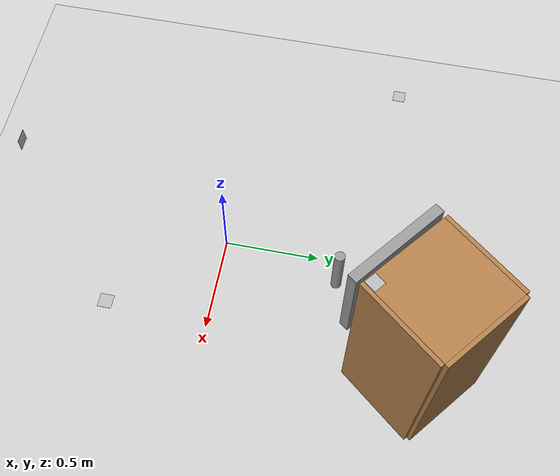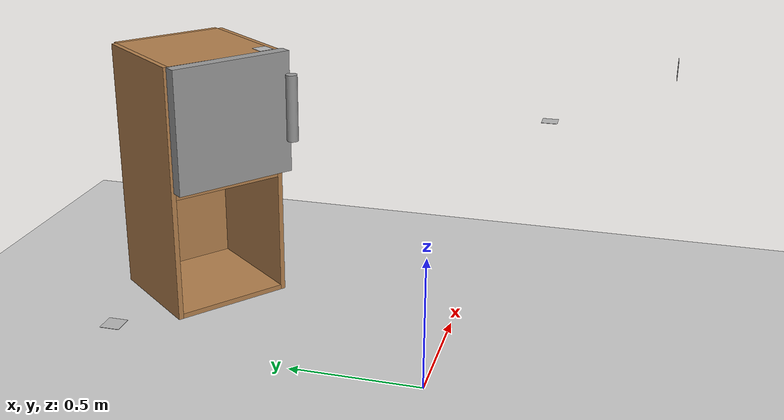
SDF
<sdf version="1.7">
 <world name="default">
  <light name="sun" type="directional">
   <pose>0 0 10 0 -0 0</pose>
   <diffuse>0.8 0.8 0.8 1</diffuse>
   <specular>0.2 0.2 0.2 1</specular>
   <attenuation>
    <range>1000</range>
    <constant>0.9</constant>
    <linear>0.01</linear>
    <quadratic>0.001</quadratic>
   </attenuation>
   <direction>-0.5 0.1 -0.9</direction>
   <spot><inner_angle>0</inner_angle><outer_angle>0</outer_angle><falloff>0</falloff></spot>
  </light>
  <model name="ground_plane">
   <static>1</static>
   <link name="link">
    <collision name="collision">
     <geometry><plane><normal>0 0 1</normal><size>100 100</size></plane></geometry>
     <surface>
      <contact><collide_bitmask>65535</collide_bitmask></contact>
      <friction><ode><mu>100</mu><mu2>50</mu2></ode></friction>
     </surface>
    </collision>
    <visual name="visual">
     <cast_shadows>0</cast_shadows>
     <geometry><plane><normal>0 0 1</normal><size>100 100</size></plane></geometry>
     <material>
      <script><uri>file://media/materials/scripts/gazebo.material</uri><name>Gazebo/Grey</name></script>
     </material>
    </visual>
   </link>
  </model>
  <gravity>0 0 -9.8</gravity>
  <magnetic_field>6e-06 2.3e-05 -4.2e-05</magnetic_field>
  <atmosphere type="adiabatic"/>
  <physics type="ode">
   <max_step_size>0.001</max_step_size>
   <real_time_factor>1</real_time_factor>
   <real_time_update_rate>1000</real_time_update_rate>
  </physics>
  <scene><ambient>0.4 0.4 0.4 1</ambient><background>0.7 0.7 0.7 1</background><shadows>1</shadows></scene>
  <spherical_coordinates>
   <surface_model>EARTH_WGS84</surface_model>
   <latitude_deg>0</latitude_deg>
   <longitude_deg>0</longitude_deg>
   <elevation>0</elevation>
   <heading_deg>0</heading_deg>
  </spherical_coordinates>
  <model name="Cabinet">
   <link name="link_1">
    <inertial>
     <mass>0.0117628</mass>
     <inertia>
      <ixx>0.00047208</ixx>
      <ixy>0</ixy>
      <ixz>0</ixz>
      <iyy>0.000233782</iyy>
      <iyz>0</iyz>
      <izz>0.000242892</izz>
     </inertia>
    </inertial>
    <pose>-0.080444 1.09691 0.789345 0 -0 0.910773</pose>
    <visual name="visual">
     <geometry><box><size>0.048406 0.495426 0.485956</size></box></geometry>
     <material>
      <lighting>1</lighting>
      <script><uri>file://media/materials/scripts/gazebo.material</uri><name>Gazebo/Grey</name></script>
      <shader type="pixel"/>
      <emissive>0 0 0 1</emissive>
     </material>
    </visual>
    <collision name="collision">
     <geometry><box><size>0.048406 0.495426 0.485956</size></box></geometry>
     <surface>
      <friction>
       <ode><mu>1</mu><mu2>1</mu2><fdir1>0 0 0</fdir1><slip1>0</slip1><slip2>0</slip2></ode>
       <torsional>
        <coefficient>1</coefficient>
        <patch_radius>0</patch_radius>
        <surface_radius>0</surface_radius>
        <use_patch_radius>1</use_patch_radius>
        <ode><slip>0</slip></ode>
       </torsional>
      </friction>
      <bounce><restitution_coefficient>0</restitution_coefficient><threshold>1e+06</threshold></bounce>
      <contact>
       <collide_without_contact>0</collide_without_contact>
       <collide_without_contact_bitmask>1</collide_without_contact_bitmask>
       <collide_bitmask>1</collide_bitmask>
       <ode>
        <soft_cfm>0</soft_cfm>
        <soft_erp>0.2</soft_erp>
        <kp>1e+13</kp>
        <kd>1</kd>
        <max_vel>0.01</max_vel>
        <min_depth>0</min_depth>
       </ode>
       <bullet>
        <split_impulse>1</split_impulse>
        <split_impulse_penetration_threshold>-0.01</split_impulse_penetration_threshold>
        <soft_cfm>0</soft_cfm>
        <soft_erp>0.2</soft_erp>
        <kp>1e+13</kp>
        <kd>1</kd>
       </bullet>
      </contact>
     </surface>
    </collision>
   </link>
   <link name="link_2">
    <inertial>
     <mass>0.000520077</mass>
     <inertia>
      <ixx>2.98392e-06</ixx>
      <ixy>0</ixy>
      <ixz>0</ixz>
      <iyy>2.98392e-06</iyy>
      <iyz>0</iyz>
      <izz>1.30256e-07</izz>
     </inertia>
    </inertial>
    <pose>-0.006569 0.88102 0.839102 0 -0 0.860373</pose>
    <visual name="visual">
     <geometry><cylinder><radius>0.022381</radius><length>0.259512</length></cylinder></geometry>
     <material>
      <lighting>1</lighting>
      <script><uri>file://media/materials/scripts/gazebo.material</uri><name>Gazebo/Grey</name></script>
      <shader type="pixel"/>
      <emissive>0 0 0 1</emissive>
     </material>
    </visual>
    <collision name="collision">
     <geometry><cylinder><radius>0.022381</radius><length>0.259512</length></cylinder></geometry>
     <surface>
      <friction>
       <ode><mu>1</mu><mu2>1</mu2><fdir1>0 0 0</fdir1><slip1>0</slip1><slip2>0</slip2></ode>
       <torsional>
        <coefficient>1</coefficient>
        <patch_radius>0</patch_radius>
        <surface_radius>0</surface_radius>
        <use_patch_radius>1</use_patch_radius>
        <ode><slip>0</slip></ode>
       </torsional>
      </friction>
      <bounce><restitution_coefficient>0</restitution_coefficient><threshold>1e+06</threshold></bounce>
      <contact>
       <collide_without_contact>0</collide_without_contact>
       <collide_without_contact_bitmask>1</collide_without_contact_bitmask>
       <collide_bitmask>1</collide_bitmask>
       <ode>
        <soft_cfm>0</soft_cfm>
        <soft_erp>0.2</soft_erp>
        <kp>1e+13</kp>
        <kd>1</kd>
        <max_vel>0.01</max_vel>
        <min_depth>0</min_depth>
       </ode>
       <bullet>
        <split_impulse>1</split_impulse>
        <split_impulse_penetration_threshold>-0.01</split_impulse_penetration_threshold>
        <soft_cfm>0</soft_cfm>
        <soft_erp>0.2</soft_erp>
        <kp>1e+13</kp>
        <kd>1</kd>
       </bullet>
      </contact>
     </surface>
    </collision>
   </link>
   <model name="cabinet">
    <static>1</static>
    <link name="cabinet_bottom_plate">
     <inertial>
      <pose>0 0 -1 0 -0 0</pose>
      <inertia><ixx>2.05</ixx><ixy>0</ixy><ixz>0</ixz><iyy>2.05</iyy><iyz>0</iyz><izz>2.05</izz></inertia>
      <mass>25</mass>
     </inertial>
     <collision name="cabinet_bottom_plate_geom">
      <pose>0 0 0.01 0 -0 0</pose>
      <geometry><box><size>0.45 0.45 0.02</size></box></geometry>
     </collision>
     <visual name="cabinet_bottom_plate_geom_visual">
      <pose>0 0 0.01 0 -0 0</pose>
      <geometry><box><size>0.45 0.45 0.02</size></box></geometry>
      <material>
       <script><uri>file://media/materials/scripts/gazebo.material</uri><name>Gazebo/Wood</name></script>
      </material>
     </visual>
     <collision name="cabinet_bottom_plate_geom_cabinet_back_plate">
      <pose>0.235 0 0.51 0 -0 0</pose>
      <geometry><box><size>0.02 0.45 1.02</size></box></geometry>
     </collision>
     <visual name="cabinet_bottom_plate_geom_cabinet_back_plate_visual">
      <pose>0.235 0 0.51 0 -0 0</pose>
      <geometry><box><size>0.02 0.45 1.02</size></box></geometry>
      <material>
       <script><uri>file://media/materials/scripts/gazebo.material</uri><name>Gazebo/Wood</name></script>
      </material>
     </visual>
     <collision name="cabinet_bottom_plate_geom_cabinet_left_plate">
      <pose>0 0.235 0.51 0 -0 0</pose>
      <geometry><box><size>0.45 0.02 1.02</size></box></geometry>
     </collision>
     <visual name="cabinet_bottom_plate_geom_cabinet_left_plate_visual">
      <pose>0 0.235 0.51 0 -0 0</pose>
      <geometry><box><size>0.45 0.02 1.02</size></box></geometry>
      <material>
       <script><uri>file://media/materials/scripts/gazebo.material</uri><name>Gazebo/Wood</name></script>
      </material>
     </visual>
     <collision name="cabinet_bottom_plate_geom_cabinet_middle_plate">
      <pose>0 0 0.51 0 -0 0</pose>
      <geometry><box><size>0.45 0.45 0.02</size></box></geometry>
     </collision>
     <visual name="cabinet_bottom_plate_geom_cabinet_middle_plate_visual">
      <pose>0 0 0.51 0 -0 0</pose>
      <geometry><box><size>0.45 0.45 0.02</size></box></geometry>
      <material>
       <script><uri>file://media/materials/scripts/gazebo.material</uri><name>Gazebo/Wood</name></script>
      </material>
     </visual>
     <collision name="cabinet_bottom_plate_geom_cabinet_right_plate">
      <pose>0 -0.235 0.51 0 -0 0</pose>
      <geometry><box><size>0.45 0.02 1.02</size></box></geometry>
     </collision>
     <visual name="cabinet_bottom_plate_geom_cabinet_right_plate_visual">
      <pose>0 -0.235 0.51 0 -0 0</pose>
      <geometry><box><size>0.45 0.02 1.02</size></box></geometry>
      <material>
       <script><uri>file://media/materials/scripts/gazebo.material</uri><name>Gazebo/Wood</name></script>
      </material>
     </visual>
     <collision name="cabinet_bottom_plate_geom_cabinet_top_plate">
      <pose>0 0 1.01 0 -0 0</pose>
      <geometry><box><size>0.45 0.45 0.02</size></box></geometry>
     </collision>
     <visual name="cabinet_bottom_plate_geom_cabinet_top_plate_visual">
      <pose>0 0 1.01 0 -0 0</pose>
      <geometry><box><size>0.45 0.45 0.02</size></box></geometry>
      <material>
       <script><uri>file://media/materials/scripts/gazebo.material</uri><name>Gazebo/Wood</name></script>
      </material>
     </visual>
    </link>
    <pose>0.080286 1.30641 0.008098 0 -0 0.89481</pose>
   </model>
   <joint name="Handle_link" type="fixed">
    <parent>link_1</parent>
    <child>link_2</child>
    <physics>
     <ode><limit><cfm>0</cfm><erp>0.2</erp></limit><suspension><cfm>0</cfm><erp>0.2</erp></suspension></ode>
    </physics>
   </joint>
   <joint name="cabinet_bottom_plate_JOINT_1" type="revolute">
    <parent>cabinet::cabinet_bottom_plate</parent>
    <child>link_1</child>
    <pose>0 0.26 0 0 -0 0</pose>
    <axis>
     <xyz>0 0 1</xyz>
     <limit>
      <lower>-1.79769e+308</lower>
      <upper>1.79769e+308</upper>
      <effort>-1</effort>
      <velocity>-1</velocity>
     </limit>
     <dynamics>
      <spring_reference>0</spring_reference>
      <spring_stiffness>0</spring_stiffness>
      <damping>0</damping>
      <friction>0</friction>
     </dynamics>
    </axis>
    <physics>
     <ode><limit><cfm>0</cfm><erp>0.2</erp></limit><suspension><cfm>0</cfm><erp>0.2</erp></suspension></ode>
    </physics>
   </joint>
   <static>0</static>
   <pose>0.474475 -0.253335 -0 0 -0 -0.002156</pose>
  </model>
  <model name="aruco_marker_6cm_238">
   <static>0</static>
   <link name="marker">
    <inertial>
     <mass>0.1</mass>
     <inertia><ixx>0</ixx><ixy>0</ixy><ixz>0</ixz><iyy>0</iyy><iyz>0</iyz><izz>0</izz></inertia>
    </inertial>
    <visual name="visual">
     <pose>0 0 0 0 -0 1.57</pose>
     <geometry><box><size>0.06 0.06 0.001</size></box></geometry>
     <material>
      <script>
       <uri>model://aruco_marker_6cm_238/material/scripts</uri>
       <uri>model://aruco_marker_6cm_238/material/textures</uri>
       <name>Aruco/aruco_marker_6cm_238</name>
      </script>
     </material>
    </visual>
    <collision name="collision"><geometry><box><size>0.06 0.06 0.001</size></box></geometry></collision>
    <self_collide>1</self_collide>
    <gravity>0</gravity>
   </link>
   <pose>0.277665 -0.744948 1.13471 -1.5708 0 0</pose>
  </model>
  <model name="aruco_marker_6cm_26">
   <static>0</static>
   <link name="marker">
    <inertial>
     <mass>0.1</mass>
     <inertia><ixx>0</ixx><ixy>0</ixy><ixz>0</ixz><iyy>0</iyy><iyz>0</iyz><izz>0</izz></inertia>
    </inertial>
    <visual name="visual">
     <pose>0 0 0 0 -0 1.57</pose>
     <geometry><box><size>0.06 0.06 0.001</size></box></geometry>
     <material>
      <script>
       <uri>model://aruco_marker_6cm_26/material/scripts</uri>
       <uri>model://aruco_marker_6cm_26/material/textures</uri>
       <name>Aruco/aruco_marker_6cm_26</name>
      </script>
     </material>
    </visual>
    <collision name="collision"><geometry><box><size>0.06 0.06 0.001</size></box></geometry></collision>
    <self_collide>1</self_collide>
   </link>
   <pose>0.588332 0.782901 1.02864 0.000635 0.000637 -0.670917</pose>
  </model>
  <model name="aruco_marker_6cm_582">
   <static>0</static>
   <link name="marker">
    <inertial>
     <mass>0.1</mass>
     <inertia><ixx>0</ixx><ixy>0</ixy><ixz>0</ixz><iyy>0</iyy><iyz>0</iyz><izz>0</izz></inertia>
    </inertial>
    <visual name="visual">
     <pose>0 0 0 0 -0 1.57</pose>
     <geometry><box><size>0.06 0.06 0.001</size></box></geometry>
     <material>
      <script>
       <uri>model://aruco_marker_6cm_582/material/scripts</uri>
       <uri>model://aruco_marker_6cm_582/material/textures</uri>
       <name>Aruco/aruco_marker_6cm_582</name>
      </script>
     </material>
    </visual>
    <collision name="collision"><geometry><box><size>0.06 0.06 0.001</size></box></geometry></collision>
    <self_collide>1</self_collide>
   </link>
   <pose>0.768782 -0.308604 0.775501 -3.2e-05 1.6e-05 0</pose>
  </model>
  <model name="aruco_marker_6cm_63">
   <static>0</static>
   <link name="marker">
    <inertial>
     <mass>0.1</mass>
     <inertia><ixx>0</ixx><ixy>0</ixy><ixz>0</ixz><iyy>0</iyy><iyz>0</iyz><izz>0</izz></inertia>
    </inertial>
    <visual name="visual">
     <pose>0 0 0 0 -0 1.57</pose>
     <geometry><box><size>0.06 0.06 0.001</size></box></geometry>
     <material>
      <script>
       <uri>model://aruco_marker_6cm_63/material/scripts</uri>
       <uri>model://aruco_marker_6cm_63/material/textures</uri>
       <name>Aruco/aruco_marker_6cm_63</name>
      </script>
     </material>
    </visual>
    <collision name="collision"><geometry><box><size>0.06 0.06 0.001</size></box></geometry></collision>
    <self_collide>1</self_collide>
    <gravity>0</gravity>
   </link>
   <pose>-0.736927 0.770488 0.52522 -0.004956 -0.003816 -9e-06</pose>
  </model>
 </world>
</sdf>
